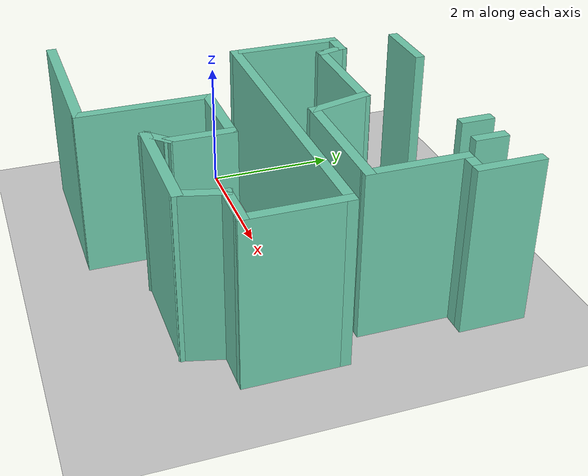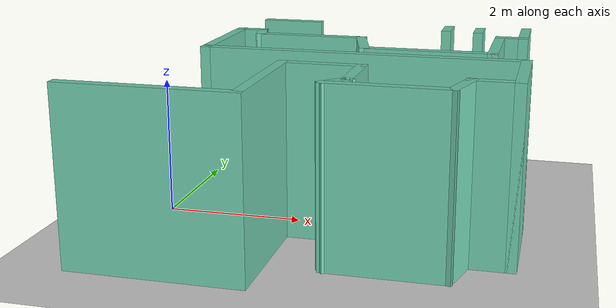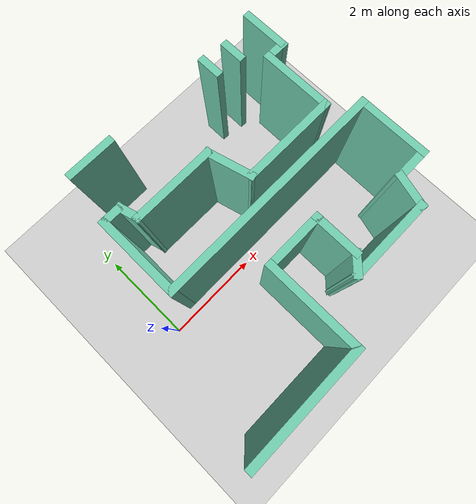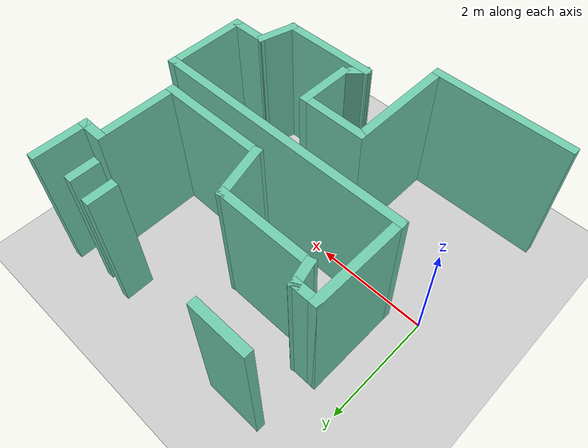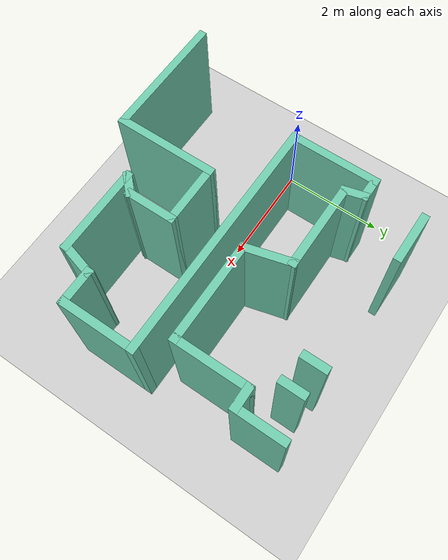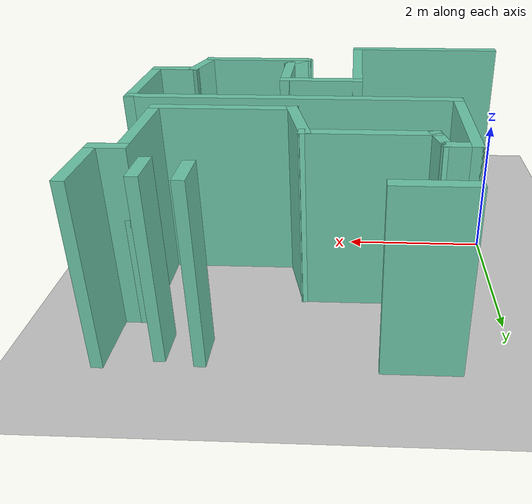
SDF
<sdf version="1.6">
 <world name="default">
  <model name="ground_plane">
   <static>1</static>
   <link name="link">
    <collision name="collision">
     <geometry><plane><normal>0 0 1</normal><size>100 100</size></plane></geometry>
     <surface><friction><ode><mu>100</mu><mu2>50</mu2></ode></friction></surface>
    </collision>
    <visual name="visual">
     <cast_shadows>0</cast_shadows>
     <geometry><plane><normal>0 0 1</normal><size>100 100</size></plane></geometry>
     <material>
      <script><uri>file://media/materials/scripts/gazebo.material</uri><name>Gazebo/Grey</name></script>
     </material>
    </visual>
   </link>
  </model>
  <model name="map_28">
   <link name="Wall_124">
    <pose>3.9811 1.60989 0 0 0 -1.5708</pose>
    <visual name="Wall_124_Visual">
     <pose>0 0 1.25 0 -0 0</pose>
     <geometry><box><size>0.5 0.15 2.5</size></box></geometry>
     <material>
      <script><uri>file://media/materials/scripts/gazebo.material</uri><name>Gazebo/Grey</name></script>
      <ambient>0.435294 0.796078 0.67451 1</ambient>
      <shader type="pixel"/>
     </material>
     <meta><layer>0</layer></meta>
    </visual>
    <collision name="Wall_124_Collision">
     <pose>0 0 1.25 0 -0 0</pose>
     <geometry><box><size>0.5 0.15 2.5</size></box></geometry>
     <surface>
      <friction>
       <ode><mu>1</mu><mu2>1</mu2><fdir1>0 0 0</fdir1><slip1>0</slip1><slip2>0</slip2></ode>
       <torsional>
        <coefficient>1</coefficient>
        <patch_radius>0</patch_radius>
        <surface_radius>0</surface_radius>
        <use_patch_radius>1</use_patch_radius>
        <ode><slip>0</slip></ode>
       </torsional>
      </friction>
      <bounce><restitution_coefficient>0</restitution_coefficient><threshold>1e+06</threshold></bounce>
      <contact>
       <collide_without_contact>0</collide_without_contact>
       <collide_without_contact_bitmask>1</collide_without_contact_bitmask>
       <collide_bitmask>1</collide_bitmask>
       <ode>
        <soft_cfm>0</soft_cfm>
        <soft_erp>0.2</soft_erp>
        <kp>1e+13</kp>
        <kd>1</kd>
        <max_vel>0.01</max_vel>
        <min_depth>0</min_depth>
       </ode>
       <bullet>
        <split_impulse>1</split_impulse>
        <split_impulse_penetration_threshold>-0.01</split_impulse_penetration_threshold>
        <soft_cfm>0</soft_cfm>
        <soft_erp>0.2</soft_erp>
        <kp>1e+13</kp>
        <kd>1</kd>
       </bullet>
      </contact>
     </surface>
    </collision>
   </link>
   <link name="Wall_126">
    <pose>4.48997 1.54049 0 0 0 -1.5708</pose>
    <visual name="Wall_126_Visual">
     <pose>0 0 1.25 0 -0 0</pose>
     <geometry><box><size>0.5 0.15 2.5</size></box></geometry>
     <material>
      <script><uri>file://media/materials/scripts/gazebo.material</uri><name>Gazebo/Grey</name></script>
      <ambient>0.435294 0.796078 0.67451 1</ambient>
      <shader type="pixel"/>
     </material>
     <meta><layer>0</layer></meta>
    </visual>
    <collision name="Wall_126_Collision">
     <pose>0 0 1.25 0 -0 0</pose>
     <geometry><box><size>0.5 0.15 2.5</size></box></geometry>
     <surface>
      <friction>
       <ode><mu>1</mu><mu2>1</mu2><fdir1>0 0 0</fdir1><slip1>0</slip1><slip2>0</slip2></ode>
       <torsional>
        <coefficient>1</coefficient>
        <patch_radius>0</patch_radius>
        <surface_radius>0</surface_radius>
        <use_patch_radius>1</use_patch_radius>
        <ode><slip>0</slip></ode>
       </torsional>
      </friction>
      <bounce><restitution_coefficient>0</restitution_coefficient><threshold>1e+06</threshold></bounce>
      <contact>
       <collide_without_contact>0</collide_without_contact>
       <collide_without_contact_bitmask>1</collide_without_contact_bitmask>
       <collide_bitmask>1</collide_bitmask>
       <ode>
        <soft_cfm>0</soft_cfm>
        <soft_erp>0.2</soft_erp>
        <kp>1e+13</kp>
        <kd>1</kd>
        <max_vel>0.01</max_vel>
        <min_depth>0</min_depth>
       </ode>
       <bullet>
        <split_impulse>1</split_impulse>
        <split_impulse_penetration_threshold>-0.01</split_impulse_penetration_threshold>
        <soft_cfm>0</soft_cfm>
        <soft_erp>0.2</soft_erp>
        <kp>1e+13</kp>
        <kd>1</kd>
       </bullet>
      </contact>
     </surface>
    </collision>
   </link>
   <link name="Wall_60">
    <pose>0.966158 -3.47481 0 0 -0 0</pose>
    <visual name="Wall_60_Visual">
     <pose>0 0 1.25 0 -0 0</pose>
     <geometry><box><size>2.5 0.15 2.5</size></box></geometry>
     <material>
      <script><uri>file://media/materials/scripts/gazebo.material</uri><name>Gazebo/Grey</name></script>
      <ambient>0.435294 0.796078 0.67451 1</ambient>
      <shader type="pixel"/>
     </material>
     <meta><layer>0</layer></meta>
    </visual>
    <collision name="Wall_60_Collision">
     <pose>0 0 1.25 0 -0 0</pose>
     <geometry><box><size>2.5 0.15 2.5</size></box></geometry>
     <surface>
      <friction>
       <ode><mu>1</mu><mu2>1</mu2><fdir1>0 0 0</fdir1><slip1>0</slip1><slip2>0</slip2></ode>
       <torsional>
        <coefficient>1</coefficient>
        <patch_radius>0</patch_radius>
        <surface_radius>0</surface_radius>
        <use_patch_radius>1</use_patch_radius>
        <ode><slip>0</slip></ode>
       </torsional>
      </friction>
      <bounce><restitution_coefficient>0</restitution_coefficient><threshold>1e+06</threshold></bounce>
      <contact>
       <collide_without_contact>0</collide_without_contact>
       <collide_without_contact_bitmask>1</collide_without_contact_bitmask>
       <collide_bitmask>1</collide_bitmask>
       <ode>
        <soft_cfm>0</soft_cfm>
        <soft_erp>0.2</soft_erp>
        <kp>1e+13</kp>
        <kd>1</kd>
        <max_vel>0.01</max_vel>
        <min_depth>0</min_depth>
       </ode>
       <bullet>
        <split_impulse>1</split_impulse>
        <split_impulse_penetration_threshold>-0.01</split_impulse_penetration_threshold>
        <soft_cfm>0</soft_cfm>
        <soft_erp>0.2</soft_erp>
        <kp>1e+13</kp>
        <kd>1</kd>
       </bullet>
      </contact>
     </surface>
    </collision>
   </link>
   <link name="Wall_61">
    <pose>2.14116 -2.54981 0 0 -0 1.5708</pose>
    <visual name="Wall_61_Visual">
     <pose>0 0 1.25 0 -0 0</pose>
     <geometry><box><size>2 0.15 2.5</size></box></geometry>
     <material>
      <script><uri>file://media/materials/scripts/gazebo.material</uri><name>Gazebo/Grey</name></script>
      <ambient>0.435294 0.796078 0.67451 1</ambient>
      <shader type="pixel"/>
     </material>
     <meta><layer>0</layer></meta>
    </visual>
    <collision name="Wall_61_Collision">
     <pose>0 0 1.25 0 -0 0</pose>
     <geometry><box><size>2 0.15 2.5</size></box></geometry>
     <surface>
      <friction>
       <ode><mu>1</mu><mu2>1</mu2><fdir1>0 0 0</fdir1><slip1>0</slip1><slip2>0</slip2></ode>
       <torsional>
        <coefficient>1</coefficient>
        <patch_radius>0</patch_radius>
        <surface_radius>0</surface_radius>
        <use_patch_radius>1</use_patch_radius>
        <ode><slip>0</slip></ode>
       </torsional>
      </friction>
      <bounce><restitution_coefficient>0</restitution_coefficient><threshold>1e+06</threshold></bounce>
      <contact>
       <collide_without_contact>0</collide_without_contact>
       <collide_without_contact_bitmask>1</collide_without_contact_bitmask>
       <collide_bitmask>1</collide_bitmask>
       <ode>
        <soft_cfm>0</soft_cfm>
        <soft_erp>0.2</soft_erp>
        <kp>1e+13</kp>
        <kd>1</kd>
        <max_vel>0.01</max_vel>
        <min_depth>0</min_depth>
       </ode>
       <bullet>
        <split_impulse>1</split_impulse>
        <split_impulse_penetration_threshold>-0.01</split_impulse_penetration_threshold>
        <soft_cfm>0</soft_cfm>
        <soft_erp>0.2</soft_erp>
        <kp>1e+13</kp>
        <kd>1</kd>
       </bullet>
      </contact>
     </surface>
    </collision>
   </link>
   <link name="Wall_62">
    <pose>2.69116 -1.62481 0 0 -0 0</pose>
    <visual name="Wall_62_Visual">
     <pose>0 0 1.25 0 -0 0</pose>
     <geometry><box><size>1.25 0.15 2.5</size></box></geometry>
     <material>
      <script><uri>file://media/materials/scripts/gazebo.material</uri><name>Gazebo/Grey</name></script>
      <ambient>0.435294 0.796078 0.67451 1</ambient>
      <shader type="pixel"/>
     </material>
     <meta><layer>0</layer></meta>
    </visual>
    <collision name="Wall_62_Collision">
     <pose>0 0 1.25 0 -0 0</pose>
     <geometry><box><size>1.25 0.15 2.5</size></box></geometry>
     <surface>
      <friction>
       <ode><mu>1</mu><mu2>1</mu2><fdir1>0 0 0</fdir1><slip1>0</slip1><slip2>0</slip2></ode>
       <torsional>
        <coefficient>1</coefficient>
        <patch_radius>0</patch_radius>
        <surface_radius>0</surface_radius>
        <use_patch_radius>1</use_patch_radius>
        <ode><slip>0</slip></ode>
       </torsional>
      </friction>
      <bounce><restitution_coefficient>0</restitution_coefficient><threshold>1e+06</threshold></bounce>
      <contact>
       <collide_without_contact>0</collide_without_contact>
       <collide_without_contact_bitmask>1</collide_without_contact_bitmask>
       <collide_bitmask>1</collide_bitmask>
       <ode>
        <soft_cfm>0</soft_cfm>
        <soft_erp>0.2</soft_erp>
        <kp>1e+13</kp>
        <kd>1</kd>
        <max_vel>0.01</max_vel>
        <min_depth>0</min_depth>
       </ode>
       <bullet>
        <split_impulse>1</split_impulse>
        <split_impulse_penetration_threshold>-0.01</split_impulse_penetration_threshold>
        <soft_cfm>0</soft_cfm>
        <soft_erp>0.2</soft_erp>
        <kp>1e+13</kp>
        <kd>1</kd>
       </bullet>
      </contact>
     </surface>
    </collision>
   </link>
   <link name="Wall_63">
    <pose>3.24116 -2.04981 0 0 0 -1.5708</pose>
    <visual name="Wall_63_Visual">
     <pose>0 0 1.25 0 -0 0</pose>
     <geometry><box><size>1 0.15 2.5</size></box></geometry>
     <material>
      <script><uri>file://media/materials/scripts/gazebo.material</uri><name>Gazebo/Grey</name></script>
      <ambient>0.435294 0.796078 0.67451 1</ambient>
      <shader type="pixel"/>
     </material>
     <meta><layer>0</layer></meta>
    </visual>
    <collision name="Wall_63_Collision">
     <pose>0 0 1.25 0 -0 0</pose>
     <geometry><box><size>1 0.15 2.5</size></box></geometry>
     <surface>
      <friction>
       <ode><mu>1</mu><mu2>1</mu2><fdir1>0 0 0</fdir1><slip1>0</slip1><slip2>0</slip2></ode>
       <torsional>
        <coefficient>1</coefficient>
        <patch_radius>0</patch_radius>
        <surface_radius>0</surface_radius>
        <use_patch_radius>1</use_patch_radius>
        <ode><slip>0</slip></ode>
       </torsional>
      </friction>
      <bounce><restitution_coefficient>0</restitution_coefficient><threshold>1e+06</threshold></bounce>
      <contact>
       <collide_without_contact>0</collide_without_contact>
       <collide_without_contact_bitmask>1</collide_without_contact_bitmask>
       <collide_bitmask>1</collide_bitmask>
       <ode>
        <soft_cfm>0</soft_cfm>
        <soft_erp>0.2</soft_erp>
        <kp>1e+13</kp>
        <kd>1</kd>
        <max_vel>0.01</max_vel>
        <min_depth>0</min_depth>
       </ode>
       <bullet>
        <split_impulse>1</split_impulse>
        <split_impulse_penetration_threshold>-0.01</split_impulse_penetration_threshold>
        <soft_cfm>0</soft_cfm>
        <soft_erp>0.2</soft_erp>
        <kp>1e+13</kp>
        <kd>1</kd>
       </bullet>
      </contact>
     </surface>
    </collision>
   </link>
   <link name="Wall_64">
    <pose>3.11741 -2.59856 0 0 0 -2.35619</pose>
    <visual name="Wall_64_Visual">
     <pose>0 0 1.25 0 -0 0</pose>
     <geometry><box><size>0.5 0.15 2.5</size></box></geometry>
     <material>
      <script><uri>file://media/materials/scripts/gazebo.material</uri><name>Gazebo/Grey</name></script>
      <ambient>0.435294 0.796078 0.67451 1</ambient>
      <shader type="pixel"/>
     </material>
     <meta><layer>0</layer></meta>
    </visual>
    <collision name="Wall_64_Collision">
     <pose>0 0 1.25 0 -0 0</pose>
     <geometry><box><size>0.5 0.15 2.5</size></box></geometry>
     <surface>
      <friction>
       <ode><mu>1</mu><mu2>1</mu2><fdir1>0 0 0</fdir1><slip1>0</slip1><slip2>0</slip2></ode>
       <torsional>
        <coefficient>1</coefficient>
        <patch_radius>0</patch_radius>
        <surface_radius>0</surface_radius>
        <use_patch_radius>1</use_patch_radius>
        <ode><slip>0</slip></ode>
       </torsional>
      </friction>
      <bounce><restitution_coefficient>0</restitution_coefficient><threshold>1e+06</threshold></bounce>
      <contact>
       <collide_without_contact>0</collide_without_contact>
       <collide_without_contact_bitmask>1</collide_without_contact_bitmask>
       <collide_bitmask>1</collide_bitmask>
       <ode>
        <soft_cfm>0</soft_cfm>
        <soft_erp>0.2</soft_erp>
        <kp>1e+13</kp>
        <kd>1</kd>
        <max_vel>0.01</max_vel>
        <min_depth>0</min_depth>
       </ode>
       <bullet>
        <split_impulse>1</split_impulse>
        <split_impulse_penetration_threshold>-0.01</split_impulse_penetration_threshold>
        <soft_cfm>0</soft_cfm>
        <soft_erp>0.2</soft_erp>
        <kp>1e+13</kp>
        <kd>1</kd>
       </bullet>
      </contact>
     </surface>
    </collision>
   </link>
   <link name="Wall_65">
    <pose>3.79367 -2.7223 0 0 -0 0</pose>
    <visual name="Wall_65_Visual">
     <pose>0 0 1.25 0 -0 0</pose>
     <geometry><box><size>1.75 0.15 2.5</size></box></geometry>
     <material>
      <script><uri>file://media/materials/scripts/gazebo.material</uri><name>Gazebo/Grey</name></script>
      <ambient>0.435294 0.796078 0.67451 1</ambient>
      <shader type="pixel"/>
     </material>
     <meta><layer>0</layer></meta>
    </visual>
    <collision name="Wall_65_Collision">
     <pose>0 0 1.25 0 -0 0</pose>
     <geometry><box><size>1.75 0.15 2.5</size></box></geometry>
     <surface>
      <friction>
       <ode><mu>1</mu><mu2>1</mu2><fdir1>0 0 0</fdir1><slip1>0</slip1><slip2>0</slip2></ode>
       <torsional>
        <coefficient>1</coefficient>
        <patch_radius>0</patch_radius>
        <surface_radius>0</surface_radius>
        <use_patch_radius>1</use_patch_radius>
        <ode><slip>0</slip></ode>
       </torsional>
      </friction>
      <bounce><restitution_coefficient>0</restitution_coefficient><threshold>1e+06</threshold></bounce>
      <contact>
       <collide_without_contact>0</collide_without_contact>
       <collide_without_contact_bitmask>1</collide_without_contact_bitmask>
       <collide_bitmask>1</collide_bitmask>
       <ode>
        <soft_cfm>0</soft_cfm>
        <soft_erp>0.2</soft_erp>
        <kp>1e+13</kp>
        <kd>1</kd>
        <max_vel>0.01</max_vel>
        <min_depth>0</min_depth>
       </ode>
       <bullet>
        <split_impulse>1</split_impulse>
        <split_impulse_penetration_threshold>-0.01</split_impulse_penetration_threshold>
        <soft_cfm>0</soft_cfm>
        <soft_erp>0.2</soft_erp>
        <kp>1e+13</kp>
        <kd>1</kd>
       </bullet>
      </contact>
     </surface>
    </collision>
   </link>
   <link name="Wall_66">
    <pose>4.67132 -2.43252 0 0 -0 1.309</pose>
    <visual name="Wall_66_Visual">
     <pose>0 0 1.25 0 -0 0</pose>
     <geometry><box><size>0.75 0.15 2.5</size></box></geometry>
     <material>
      <script><uri>file://media/materials/scripts/gazebo.material</uri><name>Gazebo/Grey</name></script>
      <ambient>0.435294 0.796078 0.67451 1</ambient>
      <shader type="pixel"/>
     </material>
     <meta><layer>0</layer></meta>
    </visual>
    <collision name="Wall_66_Collision">
     <pose>0 0 1.25 0 -0 0</pose>
     <geometry><box><size>0.75 0.15 2.5</size></box></geometry>
     <surface>
      <friction>
       <ode><mu>1</mu><mu2>1</mu2><fdir1>0 0 0</fdir1><slip1>0</slip1><slip2>0</slip2></ode>
       <torsional>
        <coefficient>1</coefficient>
        <patch_radius>0</patch_radius>
        <surface_radius>0</surface_radius>
        <use_patch_radius>1</use_patch_radius>
        <ode><slip>0</slip></ode>
       </torsional>
      </friction>
      <bounce><restitution_coefficient>0</restitution_coefficient><threshold>1e+06</threshold></bounce>
      <contact>
       <collide_without_contact>0</collide_without_contact>
       <collide_without_contact_bitmask>1</collide_without_contact_bitmask>
       <collide_bitmask>1</collide_bitmask>
       <ode>
        <soft_cfm>0</soft_cfm>
        <soft_erp>0.2</soft_erp>
        <kp>1e+13</kp>
        <kd>1</kd>
        <max_vel>0.01</max_vel>
        <min_depth>0</min_depth>
       </ode>
       <bullet>
        <split_impulse>1</split_impulse>
        <split_impulse_penetration_threshold>-0.01</split_impulse_penetration_threshold>
        <soft_cfm>0</soft_cfm>
        <soft_erp>0.2</soft_erp>
        <kp>1e+13</kp>
        <kd>1</kd>
       </bullet>
      </contact>
     </surface>
    </collision>
   </link>
   <link name="Wall_67">
    <pose>5.04896 -2.14275 0 0 -0 0</pose>
    <visual name="Wall_67_Visual">
     <pose>0 0 1.25 0 -0 0</pose>
     <geometry><box><size>0.75 0.15 2.5</size></box></geometry>
     <material>
      <script><uri>file://media/materials/scripts/gazebo.material</uri><name>Gazebo/Grey</name></script>
      <ambient>0.435294 0.796078 0.67451 1</ambient>
      <shader type="pixel"/>
     </material>
     <meta><layer>0</layer></meta>
    </visual>
    <collision name="Wall_67_Collision">
     <pose>0 0 1.25 0 -0 0</pose>
     <geometry><box><size>0.75 0.15 2.5</size></box></geometry>
     <surface>
      <friction>
       <ode><mu>1</mu><mu2>1</mu2><fdir1>0 0 0</fdir1><slip1>0</slip1><slip2>0</slip2></ode>
       <torsional>
        <coefficient>1</coefficient>
        <patch_radius>0</patch_radius>
        <surface_radius>0</surface_radius>
        <use_patch_radius>1</use_patch_radius>
        <ode><slip>0</slip></ode>
       </torsional>
      </friction>
      <bounce><restitution_coefficient>0</restitution_coefficient><threshold>1e+06</threshold></bounce>
      <contact>
       <collide_without_contact>0</collide_without_contact>
       <collide_without_contact_bitmask>1</collide_without_contact_bitmask>
       <collide_bitmask>1</collide_bitmask>
       <ode>
        <soft_cfm>0</soft_cfm>
        <soft_erp>0.2</soft_erp>
        <kp>1e+13</kp>
        <kd>1</kd>
        <max_vel>0.01</max_vel>
        <min_depth>0</min_depth>
       </ode>
       <bullet>
        <split_impulse>1</split_impulse>
        <split_impulse_penetration_threshold>-0.01</split_impulse_penetration_threshold>
        <soft_cfm>0</soft_cfm>
        <soft_erp>0.2</soft_erp>
        <kp>1e+13</kp>
        <kd>1</kd>
       </bullet>
      </contact>
     </surface>
    </collision>
   </link>
   <link name="Wall_68">
    <pose>5.34896 -1.46775 0 0 -0 1.5708</pose>
    <visual name="Wall_68_Visual">
     <pose>0 0 1.25 0 -0 0</pose>
     <geometry><box><size>1.5 0.15 2.5</size></box></geometry>
     <material>
      <script><uri>file://media/materials/scripts/gazebo.material</uri><name>Gazebo/Grey</name></script>
      <ambient>0.435294 0.796078 0.67451 1</ambient>
      <shader type="pixel"/>
     </material>
     <meta><layer>0</layer></meta>
    </visual>
    <collision name="Wall_68_Collision">
     <pose>0 0 1.25 0 -0 0</pose>
     <geometry><box><size>1.5 0.15 2.5</size></box></geometry>
     <surface>
      <friction>
       <ode><mu>1</mu><mu2>1</mu2><fdir1>0 0 0</fdir1><slip1>0</slip1><slip2>0</slip2></ode>
       <torsional>
        <coefficient>1</coefficient>
        <patch_radius>0</patch_radius>
        <surface_radius>0</surface_radius>
        <use_patch_radius>1</use_patch_radius>
        <ode><slip>0</slip></ode>
       </torsional>
      </friction>
      <bounce><restitution_coefficient>0</restitution_coefficient><threshold>1e+06</threshold></bounce>
      <contact>
       <collide_without_contact>0</collide_without_contact>
       <collide_without_contact_bitmask>1</collide_without_contact_bitmask>
       <collide_bitmask>1</collide_bitmask>
       <ode>
        <soft_cfm>0</soft_cfm>
        <soft_erp>0.2</soft_erp>
        <kp>1e+13</kp>
        <kd>1</kd>
        <max_vel>0.01</max_vel>
        <min_depth>0</min_depth>
       </ode>
       <bullet>
        <split_impulse>1</split_impulse>
        <split_impulse_penetration_threshold>-0.01</split_impulse_penetration_threshold>
        <soft_cfm>0</soft_cfm>
        <soft_erp>0.2</soft_erp>
        <kp>1e+13</kp>
        <kd>1</kd>
       </bullet>
      </contact>
     </surface>
    </collision>
   </link>
   <link name="Wall_69">
    <pose>3.04896 -0.792746 0 0 -0 3.14159</pose>
    <visual name="Wall_69_Visual">
     <pose>0 0 1.25 0 -0 0</pose>
     <geometry><box><size>4.75 0.15 2.5</size></box></geometry>
     <material>
      <script><uri>file://media/materials/scripts/gazebo.material</uri><name>Gazebo/Grey</name></script>
      <ambient>0.435294 0.796078 0.67451 1</ambient>
      <shader type="pixel"/>
     </material>
     <meta><layer>0</layer></meta>
    </visual>
    <collision name="Wall_69_Collision">
     <pose>0 0 1.25 0 -0 0</pose>
     <geometry><box><size>4.75 0.15 2.5</size></box></geometry>
     <surface>
      <friction>
       <ode><mu>1</mu><mu2>1</mu2><fdir1>0 0 0</fdir1><slip1>0</slip1><slip2>0</slip2></ode>
       <torsional>
        <coefficient>1</coefficient>
        <patch_radius>0</patch_radius>
        <surface_radius>0</surface_radius>
        <use_patch_radius>1</use_patch_radius>
        <ode><slip>0</slip></ode>
       </torsional>
      </friction>
      <bounce><restitution_coefficient>0</restitution_coefficient><threshold>1e+06</threshold></bounce>
      <contact>
       <collide_without_contact>0</collide_without_contact>
       <collide_without_contact_bitmask>1</collide_without_contact_bitmask>
       <collide_bitmask>1</collide_bitmask>
       <ode>
        <soft_cfm>0</soft_cfm>
        <soft_erp>0.2</soft_erp>
        <kp>1e+13</kp>
        <kd>1</kd>
        <max_vel>0.01</max_vel>
        <min_depth>0</min_depth>
       </ode>
       <bullet>
        <split_impulse>1</split_impulse>
        <split_impulse_penetration_threshold>-0.01</split_impulse_penetration_threshold>
        <soft_cfm>0</soft_cfm>
        <soft_erp>0.2</soft_erp>
        <kp>1e+13</kp>
        <kd>1</kd>
       </bullet>
      </contact>
     </surface>
    </collision>
   </link>
   <link name="Wall_70">
    <pose>0.748962 0.007254 0 0 -0 1.5708</pose>
    <visual name="Wall_70_Visual">
     <pose>0 0 1.25 0 -0 0</pose>
     <geometry><box><size>1.75 0.15 2.5</size></box></geometry>
     <material>
      <script><uri>file://media/materials/scripts/gazebo.material</uri><name>Gazebo/Grey</name></script>
      <ambient>0.435294 0.796078 0.67451 1</ambient>
      <shader type="pixel"/>
     </material>
     <meta><layer>0</layer></meta>
    </visual>
    <collision name="Wall_70_Collision">
     <pose>0 0 1.25 0 -0 0</pose>
     <geometry><box><size>1.75 0.15 2.5</size></box></geometry>
     <surface>
      <friction>
       <ode><mu>1</mu><mu2>1</mu2><fdir1>0 0 0</fdir1><slip1>0</slip1><slip2>0</slip2></ode>
       <torsional>
        <coefficient>1</coefficient>
        <patch_radius>0</patch_radius>
        <surface_radius>0</surface_radius>
        <use_patch_radius>1</use_patch_radius>
        <ode><slip>0</slip></ode>
       </torsional>
      </friction>
      <bounce><restitution_coefficient>0</restitution_coefficient><threshold>1e+06</threshold></bounce>
      <contact>
       <collide_without_contact>0</collide_without_contact>
       <collide_without_contact_bitmask>1</collide_without_contact_bitmask>
       <collide_bitmask>1</collide_bitmask>
       <ode>
        <soft_cfm>0</soft_cfm>
        <soft_erp>0.2</soft_erp>
        <kp>1e+13</kp>
        <kd>1</kd>
        <max_vel>0.01</max_vel>
        <min_depth>0</min_depth>
       </ode>
       <bullet>
        <split_impulse>1</split_impulse>
        <split_impulse_penetration_threshold>-0.01</split_impulse_penetration_threshold>
        <soft_cfm>0</soft_cfm>
        <soft_erp>0.2</soft_erp>
        <kp>1e+13</kp>
        <kd>1</kd>
       </bullet>
      </contact>
     </surface>
    </collision>
   </link>
   <link name="Wall_71">
    <pose>0.923962 0.807254 0 0 -0 0</pose>
    <visual name="Wall_71_Visual">
     <pose>0 0 1.25 0 -0 0</pose>
     <geometry><box><size>0.5 0.15 2.5</size></box></geometry>
     <material>
      <script><uri>file://media/materials/scripts/gazebo.material</uri><name>Gazebo/Grey</name></script>
      <ambient>0.435294 0.796078 0.67451 1</ambient>
      <shader type="pixel"/>
     </material>
     <meta><layer>0</layer></meta>
    </visual>
    <collision name="Wall_71_Collision">
     <pose>0 0 1.25 0 -0 0</pose>
     <geometry><box><size>0.5 0.15 2.5</size></box></geometry>
     <surface>
      <friction>
       <ode><mu>1</mu><mu2>1</mu2><fdir1>0 0 0</fdir1><slip1>0</slip1><slip2>0</slip2></ode>
       <torsional>
        <coefficient>1</coefficient>
        <patch_radius>0</patch_radius>
        <surface_radius>0</surface_radius>
        <use_patch_radius>1</use_patch_radius>
        <ode><slip>0</slip></ode>
       </torsional>
      </friction>
      <bounce><restitution_coefficient>0</restitution_coefficient><threshold>1e+06</threshold></bounce>
      <contact>
       <collide_without_contact>0</collide_without_contact>
       <collide_without_contact_bitmask>1</collide_without_contact_bitmask>
       <collide_bitmask>1</collide_bitmask>
       <ode>
        <soft_cfm>0</soft_cfm>
        <soft_erp>0.2</soft_erp>
        <kp>1e+13</kp>
        <kd>1</kd>
        <max_vel>0.01</max_vel>
        <min_depth>0</min_depth>
       </ode>
       <bullet>
        <split_impulse>1</split_impulse>
        <split_impulse_penetration_threshold>-0.01</split_impulse_penetration_threshold>
        <soft_cfm>0</soft_cfm>
        <soft_erp>0.2</soft_erp>
        <kp>1e+13</kp>
        <kd>1</kd>
       </bullet>
      </contact>
     </surface>
    </collision>
   </link>
   <link name="Wall_72">
    <pose>1.14426 0.638217 0 0 0 -1.309</pose>
    <visual name="Wall_72_Visual">
     <pose>0 0 1.25 0 -0 0</pose>
     <geometry><box><size>0.5 0.15 2.5</size></box></geometry>
     <material>
      <script><uri>file://media/materials/scripts/gazebo.material</uri><name>Gazebo/Grey</name></script>
      <ambient>0.435294 0.796078 0.67451 1</ambient>
      <shader type="pixel"/>
     </material>
     <meta><layer>0</layer></meta>
    </visual>
    <collision name="Wall_72_Collision">
     <pose>0 0 1.25 0 -0 0</pose>
     <geometry><box><size>0.5 0.15 2.5</size></box></geometry>
     <surface>
      <friction>
       <ode><mu>1</mu><mu2>1</mu2><fdir1>0 0 0</fdir1><slip1>0</slip1><slip2>0</slip2></ode>
       <torsional>
        <coefficient>1</coefficient>
        <patch_radius>0</patch_radius>
        <surface_radius>0</surface_radius>
        <use_patch_radius>1</use_patch_radius>
        <ode><slip>0</slip></ode>
       </torsional>
      </friction>
      <bounce><restitution_coefficient>0</restitution_coefficient><threshold>1e+06</threshold></bounce>
      <contact>
       <collide_without_contact>0</collide_without_contact>
       <collide_without_contact_bitmask>1</collide_without_contact_bitmask>
       <collide_bitmask>1</collide_bitmask>
       <ode>
        <soft_cfm>0</soft_cfm>
        <soft_erp>0.2</soft_erp>
        <kp>1e+13</kp>
        <kd>1</kd>
        <max_vel>0.01</max_vel>
        <min_depth>0</min_depth>
       </ode>
       <bullet>
        <split_impulse>1</split_impulse>
        <split_impulse_penetration_threshold>-0.01</split_impulse_penetration_threshold>
        <soft_cfm>0</soft_cfm>
        <soft_erp>0.2</soft_erp>
        <kp>1e+13</kp>
        <kd>1</kd>
       </bullet>
      </contact>
     </surface>
    </collision>
   </link>
   <link name="Wall_73">
    <pose>1.98955 0.46918 0 0 -0 0</pose>
    <visual name="Wall_73_Visual">
     <pose>0 0 1.25 0 -0 0</pose>
     <geometry><box><size>1.75 0.15 2.5</size></box></geometry>
     <material>
      <script><uri>file://media/materials/scripts/gazebo.material</uri><name>Gazebo/Grey</name></script>
      <ambient>0.435294 0.796078 0.67451 1</ambient>
      <shader type="pixel"/>
     </material>
     <meta><layer>0</layer></meta>
    </visual>
    <collision name="Wall_73_Collision">
     <pose>0 0 1.25 0 -0 0</pose>
     <geometry><box><size>1.75 0.15 2.5</size></box></geometry>
     <surface>
      <friction>
       <ode><mu>1</mu><mu2>1</mu2><fdir1>0 0 0</fdir1><slip1>0</slip1><slip2>0</slip2></ode>
       <torsional>
        <coefficient>1</coefficient>
        <patch_radius>0</patch_radius>
        <surface_radius>0</surface_radius>
        <use_patch_radius>1</use_patch_radius>
        <ode><slip>0</slip></ode>
       </torsional>
      </friction>
      <bounce><restitution_coefficient>0</restitution_coefficient><threshold>1e+06</threshold></bounce>
      <contact>
       <collide_without_contact>0</collide_without_contact>
       <collide_without_contact_bitmask>1</collide_without_contact_bitmask>
       <collide_bitmask>1</collide_bitmask>
       <ode>
        <soft_cfm>0</soft_cfm>
        <soft_erp>0.2</soft_erp>
        <kp>1e+13</kp>
        <kd>1</kd>
        <max_vel>0.01</max_vel>
        <min_depth>0</min_depth>
       </ode>
       <bullet>
        <split_impulse>1</split_impulse>
        <split_impulse_penetration_threshold>-0.01</split_impulse_penetration_threshold>
        <soft_cfm>0</soft_cfm>
        <soft_erp>0.2</soft_erp>
        <kp>1e+13</kp>
        <kd>1</kd>
       </bullet>
      </contact>
     </surface>
    </collision>
   </link>
   <link name="Wall_74">
    <pose>2.89955 0.058662 0 0 0 -1.309</pose>
    <visual name="Wall_74_Visual">
     <pose>0 0 1.25 0 -0 0</pose>
     <geometry><box><size>1 0.15 2.5</size></box></geometry>
     <material>
      <script><uri>file://media/materials/scripts/gazebo.material</uri><name>Gazebo/Grey</name></script>
      <ambient>0.435294 0.796078 0.67451 1</ambient>
      <shader type="pixel"/>
     </material>
     <meta><layer>0</layer></meta>
    </visual>
    <collision name="Wall_74_Collision">
     <pose>0 0 1.25 0 -0 0</pose>
     <geometry><box><size>1 0.15 2.5</size></box></geometry>
     <surface>
      <friction>
       <ode><mu>1</mu><mu2>1</mu2><fdir1>0 0 0</fdir1><slip1>0</slip1><slip2>0</slip2></ode>
       <torsional>
        <coefficient>1</coefficient>
        <patch_radius>0</patch_radius>
        <surface_radius>0</surface_radius>
        <use_patch_radius>1</use_patch_radius>
        <ode><slip>0</slip></ode>
       </torsional>
      </friction>
      <bounce><restitution_coefficient>0</restitution_coefficient><threshold>1e+06</threshold></bounce>
      <contact>
       <collide_without_contact>0</collide_without_contact>
       <collide_without_contact_bitmask>1</collide_without_contact_bitmask>
       <collide_bitmask>1</collide_bitmask>
       <ode>
        <soft_cfm>0</soft_cfm>
        <soft_erp>0.2</soft_erp>
        <kp>1e+13</kp>
        <kd>1</kd>
        <max_vel>0.01</max_vel>
        <min_depth>0</min_depth>
       </ode>
       <bullet>
        <split_impulse>1</split_impulse>
        <split_impulse_penetration_threshold>-0.01</split_impulse_penetration_threshold>
        <soft_cfm>0</soft_cfm>
        <soft_erp>0.2</soft_erp>
        <kp>1e+13</kp>
        <kd>1</kd>
       </bullet>
      </contact>
     </surface>
    </collision>
   </link>
   <link name="Wall_75">
    <pose>3.93454 -0.351857 0 0 -0 0</pose>
    <visual name="Wall_75_Visual">
     <pose>0 0 1.25 0 -0 0</pose>
     <geometry><box><size>2 0.15 2.5</size></box></geometry>
     <material>
      <script><uri>file://media/materials/scripts/gazebo.material</uri><name>Gazebo/Grey</name></script>
      <ambient>0.435294 0.796078 0.67451 1</ambient>
      <shader type="pixel"/>
     </material>
     <meta><layer>0</layer></meta>
    </visual>
    <collision name="Wall_75_Collision">
     <pose>0 0 1.25 0 -0 0</pose>
     <geometry><box><size>2 0.15 2.5</size></box></geometry>
     <surface>
      <friction>
       <ode><mu>1</mu><mu2>1</mu2><fdir1>0 0 0</fdir1><slip1>0</slip1><slip2>0</slip2></ode>
       <torsional>
        <coefficient>1</coefficient>
        <patch_radius>0</patch_radius>
        <surface_radius>0</surface_radius>
        <use_patch_radius>1</use_patch_radius>
        <ode><slip>0</slip></ode>
       </torsional>
      </friction>
      <bounce><restitution_coefficient>0</restitution_coefficient><threshold>1e+06</threshold></bounce>
      <contact>
       <collide_without_contact>0</collide_without_contact>
       <collide_without_contact_bitmask>1</collide_without_contact_bitmask>
       <collide_bitmask>1</collide_bitmask>
       <ode>
        <soft_cfm>0</soft_cfm>
        <soft_erp>0.2</soft_erp>
        <kp>1e+13</kp>
        <kd>1</kd>
        <max_vel>0.01</max_vel>
        <min_depth>0</min_depth>
       </ode>
       <bullet>
        <split_impulse>1</split_impulse>
        <split_impulse_penetration_threshold>-0.01</split_impulse_penetration_threshold>
        <soft_cfm>0</soft_cfm>
        <soft_erp>0.2</soft_erp>
        <kp>1e+13</kp>
        <kd>1</kd>
       </bullet>
      </contact>
     </surface>
    </collision>
   </link>
   <link name="Wall_76">
    <pose>4.85954 0.323143 0 0 -0 1.5708</pose>
    <visual name="Wall_76_Visual">
     <pose>0 0 1.25 0 -0 0</pose>
     <geometry><box><size>1.5 0.15 2.5</size></box></geometry>
     <material>
      <script><uri>file://media/materials/scripts/gazebo.material</uri><name>Gazebo/Grey</name></script>
      <ambient>0.435294 0.796078 0.67451 1</ambient>
      <shader type="pixel"/>
     </material>
     <meta><layer>0</layer></meta>
    </visual>
    <collision name="Wall_76_Collision">
     <pose>0 0 1.25 0 -0 0</pose>
     <geometry><box><size>1.5 0.15 2.5</size></box></geometry>
     <surface>
      <friction>
       <ode><mu>1</mu><mu2>1</mu2><fdir1>0 0 0</fdir1><slip1>0</slip1><slip2>0</slip2></ode>
       <torsional>
        <coefficient>1</coefficient>
        <patch_radius>0</patch_radius>
        <surface_radius>0</surface_radius>
        <use_patch_radius>1</use_patch_radius>
        <ode><slip>0</slip></ode>
       </torsional>
      </friction>
      <bounce><restitution_coefficient>0</restitution_coefficient><threshold>1e+06</threshold></bounce>
      <contact>
       <collide_without_contact>0</collide_without_contact>
       <collide_without_contact_bitmask>1</collide_without_contact_bitmask>
       <collide_bitmask>1</collide_bitmask>
       <ode>
        <soft_cfm>0</soft_cfm>
        <soft_erp>0.2</soft_erp>
        <kp>1e+13</kp>
        <kd>1</kd>
        <max_vel>0.01</max_vel>
        <min_depth>0</min_depth>
       </ode>
       <bullet>
        <split_impulse>1</split_impulse>
        <split_impulse_penetration_threshold>-0.01</split_impulse_penetration_threshold>
        <soft_cfm>0</soft_cfm>
        <soft_erp>0.2</soft_erp>
        <kp>1e+13</kp>
        <kd>1</kd>
       </bullet>
      </contact>
     </surface>
    </collision>
   </link>
   <link name="Wall_77">
    <pose>5.03454 0.998143 0 0 -0 0</pose>
    <visual name="Wall_77_Visual">
     <pose>0 0 1.25 0 -0 0</pose>
     <geometry><box><size>0.5 0.15 2.5</size></box></geometry>
     <material>
      <script><uri>file://media/materials/scripts/gazebo.material</uri><name>Gazebo/Grey</name></script>
      <ambient>0.435294 0.796078 0.67451 1</ambient>
      <shader type="pixel"/>
     </material>
     <meta><layer>0</layer></meta>
    </visual>
    <collision name="Wall_77_Collision">
     <pose>0 0 1.25 0 -0 0</pose>
     <geometry><box><size>0.5 0.15 2.5</size></box></geometry>
     <surface>
      <friction>
       <ode><mu>1</mu><mu2>1</mu2><fdir1>0 0 0</fdir1><slip1>0</slip1><slip2>0</slip2></ode>
       <torsional>
        <coefficient>1</coefficient>
        <patch_radius>0</patch_radius>
        <surface_radius>0</surface_radius>
        <use_patch_radius>1</use_patch_radius>
        <ode><slip>0</slip></ode>
       </torsional>
      </friction>
      <bounce><restitution_coefficient>0</restitution_coefficient><threshold>1e+06</threshold></bounce>
      <contact>
       <collide_without_contact>0</collide_without_contact>
       <collide_without_contact_bitmask>1</collide_without_contact_bitmask>
       <collide_bitmask>1</collide_bitmask>
       <ode>
        <soft_cfm>0</soft_cfm>
        <soft_erp>0.2</soft_erp>
        <kp>1e+13</kp>
        <kd>1</kd>
        <max_vel>0.01</max_vel>
        <min_depth>0</min_depth>
       </ode>
       <bullet>
        <split_impulse>1</split_impulse>
        <split_impulse_penetration_threshold>-0.01</split_impulse_penetration_threshold>
        <soft_cfm>0</soft_cfm>
        <soft_erp>0.2</soft_erp>
        <kp>1e+13</kp>
        <kd>1</kd>
       </bullet>
      </contact>
     </surface>
    </collision>
   </link>
   <link name="Wall_78">
    <pose>5.20955 1.42314 0 0 -0 1.5708</pose>
    <visual name="Wall_78_Visual">
     <pose>0 0 1.25 0 -0 0</pose>
     <geometry><box><size>1 0.15 2.5</size></box></geometry>
     <material>
      <script><uri>file://media/materials/scripts/gazebo.material</uri><name>Gazebo/Grey</name></script>
      <ambient>0.435294 0.796078 0.67451 1</ambient>
      <shader type="pixel"/>
     </material>
     <meta><layer>0</layer></meta>
    </visual>
    <collision name="Wall_78_Collision">
     <pose>0 0 1.25 0 -0 0</pose>
     <geometry><box><size>1 0.15 2.5</size></box></geometry>
     <surface>
      <friction>
       <ode><mu>1</mu><mu2>1</mu2><fdir1>0 0 0</fdir1><slip1>0</slip1><slip2>0</slip2></ode>
       <torsional>
        <coefficient>1</coefficient>
        <patch_radius>0</patch_radius>
        <surface_radius>0</surface_radius>
        <use_patch_radius>1</use_patch_radius>
        <ode><slip>0</slip></ode>
       </torsional>
      </friction>
      <bounce><restitution_coefficient>0</restitution_coefficient><threshold>1e+06</threshold></bounce>
      <contact>
       <collide_without_contact>0</collide_without_contact>
       <collide_without_contact_bitmask>1</collide_without_contact_bitmask>
       <collide_bitmask>1</collide_bitmask>
       <ode>
        <soft_cfm>0</soft_cfm>
        <soft_erp>0.2</soft_erp>
        <kp>1e+13</kp>
        <kd>1</kd>
        <max_vel>0.01</max_vel>
        <min_depth>0</min_depth>
       </ode>
       <bullet>
        <split_impulse>1</split_impulse>
        <split_impulse_penetration_threshold>-0.01</split_impulse_penetration_threshold>
        <soft_cfm>0</soft_cfm>
        <soft_erp>0.2</soft_erp>
        <kp>1e+13</kp>
        <kd>1</kd>
       </bullet>
      </contact>
     </surface>
    </collision>
   </link>
   <link name="Wall_81">
    <pose>1.33795 1.82226 0 0 -0 3.14159</pose>
    <visual name="Wall_81_Visual">
     <pose>0 0 1.25 0 -0 0</pose>
     <geometry><box><size>1 0.15 2.5</size></box></geometry>
     <material>
      <script><uri>file://media/materials/scripts/gazebo.material</uri><name>Gazebo/Grey</name></script>
      <ambient>0.435294 0.796078 0.67451 1</ambient>
      <shader type="pixel"/>
     </material>
     <meta><layer>0</layer></meta>
    </visual>
    <collision name="Wall_81_Collision">
     <pose>0 0 1.25 0 -0 0</pose>
     <geometry><box><size>1 0.15 2.5</size></box></geometry>
     <surface>
      <friction>
       <ode><mu>1</mu><mu2>1</mu2><fdir1>0 0 0</fdir1><slip1>0</slip1><slip2>0</slip2></ode>
       <torsional>
        <coefficient>1</coefficient>
        <patch_radius>0</patch_radius>
        <surface_radius>0</surface_radius>
        <use_patch_radius>1</use_patch_radius>
        <ode><slip>0</slip></ode>
       </torsional>
      </friction>
      <bounce><restitution_coefficient>0</restitution_coefficient><threshold>1e+06</threshold></bounce>
      <contact>
       <collide_without_contact>0</collide_without_contact>
       <collide_without_contact_bitmask>1</collide_without_contact_bitmask>
       <collide_bitmask>1</collide_bitmask>
       <ode>
        <soft_cfm>0</soft_cfm>
        <soft_erp>0.2</soft_erp>
        <kp>1e+13</kp>
        <kd>1</kd>
        <max_vel>0.01</max_vel>
        <min_depth>0</min_depth>
       </ode>
       <bullet>
        <split_impulse>1</split_impulse>
        <split_impulse_penetration_threshold>-0.01</split_impulse_penetration_threshold>
        <soft_cfm>0</soft_cfm>
        <soft_erp>0.2</soft_erp>
        <kp>1e+13</kp>
        <kd>1</kd>
       </bullet>
      </contact>
     </surface>
    </collision>
   </link>
   <static>1</static>
   <pose>-0.195887 1.02335 0 0 -0 0</pose>
  </model>
 </world>
</sdf>
